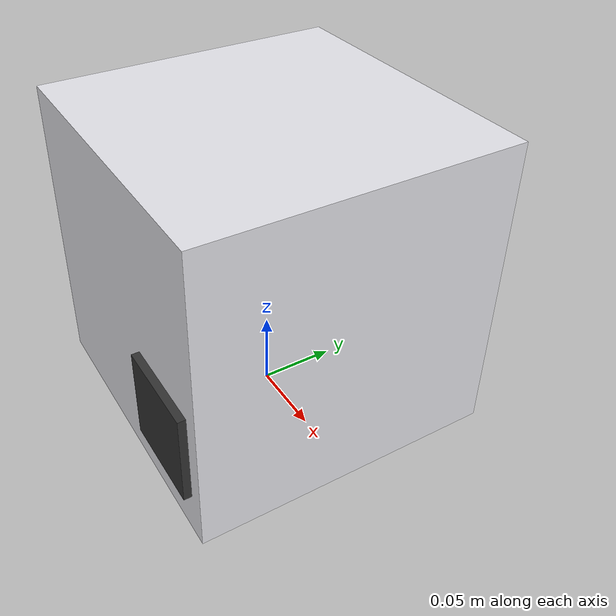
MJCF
<?xml version="1.0" encoding="utf-8"?>
<mujoco model="flow_cytometer">
  <compiler angle="radian" autolimits="true"/>
  <default>
    <default class="body"><geom contype="1" conaffinity="1"/></default>
  </default>
  <worldbody>
    <body name="base">
      <geom type="box" size="0.1 0.1 0.1" pos="0 0 0.1" rgba="0.9 0.9 0.92 1" class="body"/>
      <geom type="box" size="0.03 0.005000000000000001 0.025" pos="-0.05 -0.09000000000000001 0.15000000000000002" rgba="0.9 0.7 0.1 1" class="body"/>
      <body name="sample_port" pos="0.06 -0.10 0.06">
        <joint name="sample_port_joint" type="hinge" axis="1 0 0" range="0 1.2" damping="0.2" frictionloss="0.3"/>
  <geom type="box" size="0.03 0.005 0.03" pos="0 0 0" rgba="0.2 0.2 0.2 1" class="body"/>
      </body>
    </body>
  </worldbody>
</mujoco>
